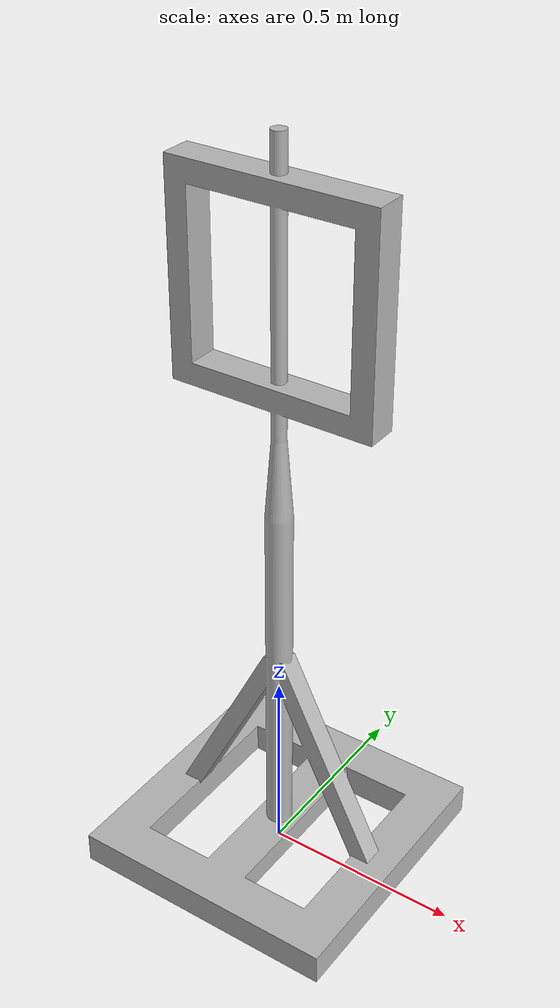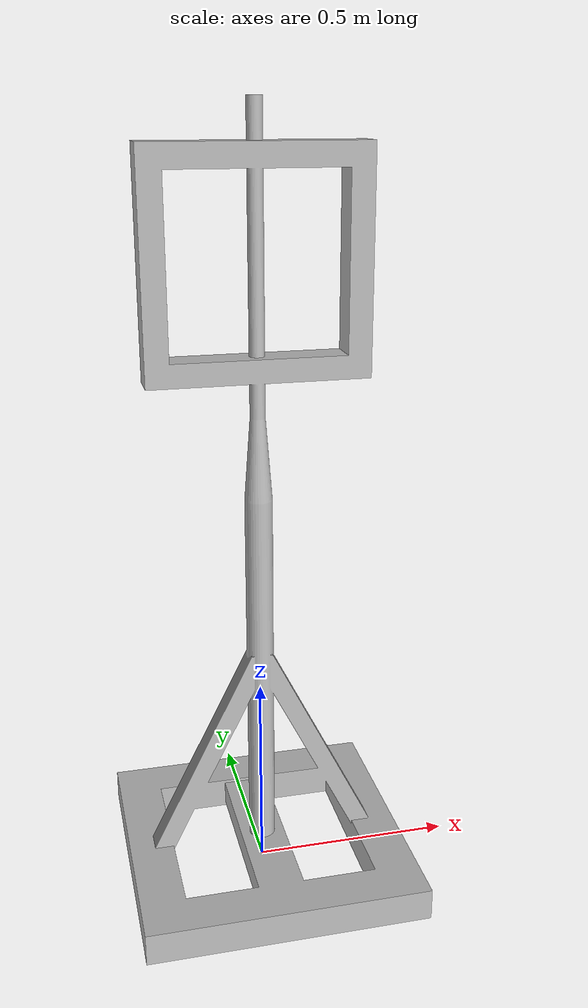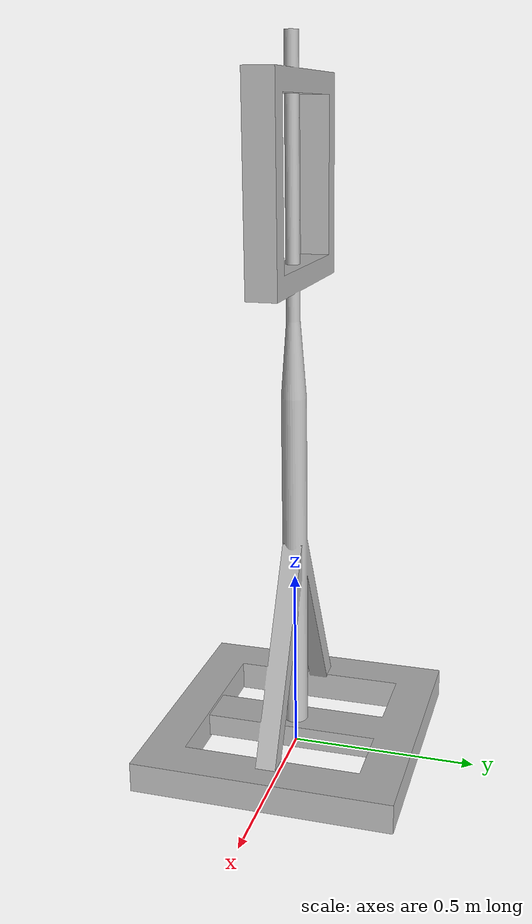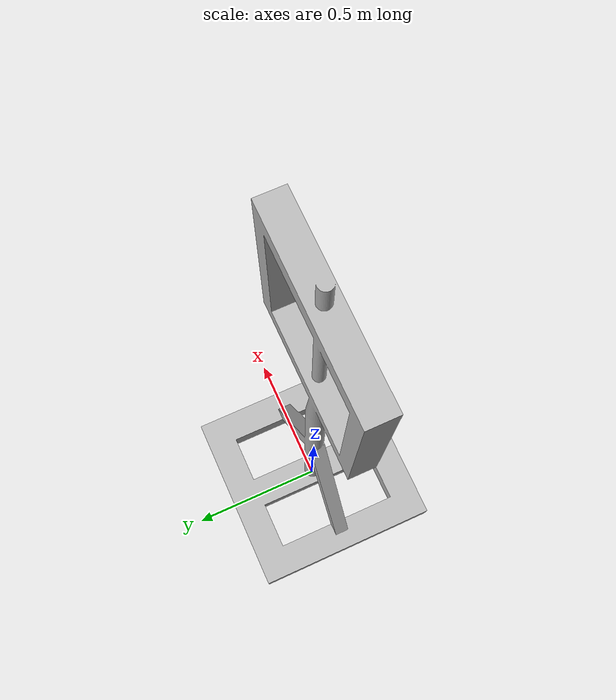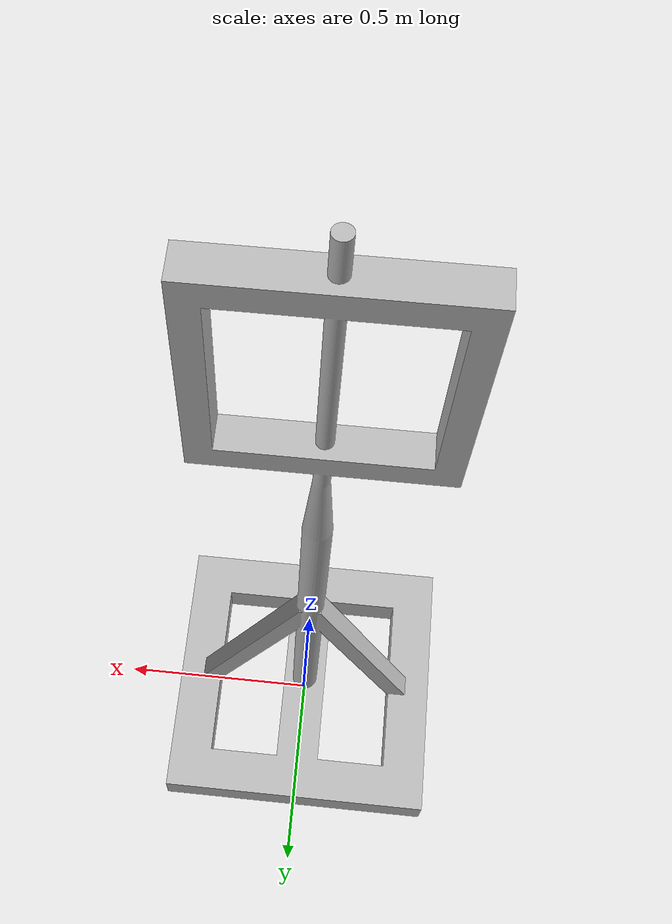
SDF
<?xml version="1.0"?>
<sdf version="1.4">
    <model name="apriltag_support">
        <pose>0 0 0 0 0 0</pose>
        <static>true</static>
        <link name="apriltag_support_body">
            <visual name="visual">
                <geometry>
                    <mesh>
                        <uri>model://apriltag_support/visual.osgb</uri>
                    </mesh>
                </geometry>
            </visual>
            <collision name="collision">
                <geometry>
                    <mesh>
                        <uri>model://apriltag_support/collision.stl</uri>
                    </mesh>
                </geometry>
            </collision>
            <inertial>
                <pose>0 0 -1 0 0 0</pose>
                <inertia>
                    <ixx>0.0</ixx>
                    <ixy>0</ixy>
                    <ixz>0.0</ixz>
                    <iyy>0.0</iyy>
                    <iyz>0</iyz>
                    <izz>0.0</izz>
                </inertia>
                <mass>1.0</mass>
            </inertial>
        </link>
    </model>
</sdf>
